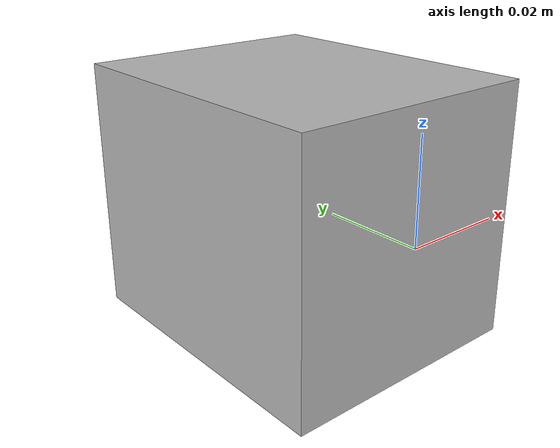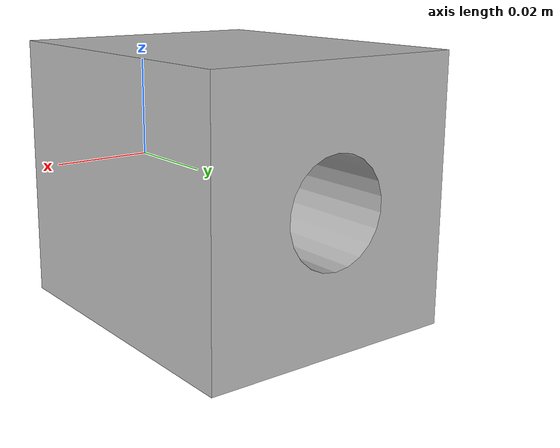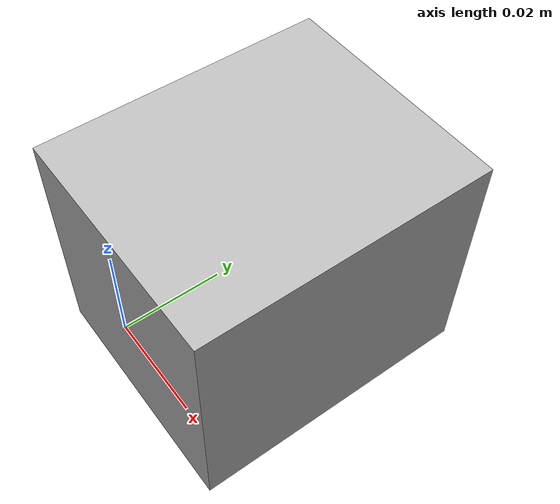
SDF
<?xml version="1.0" encoding="UTF-8"?>
<sdf version="1.4">
   <model name="hole_model">
      <static>false</static>
      <link name="hole_link">
         <pose>0 0 0 0 0 0</pose>
         <inertial>
            <mass>1</mass>
            <pose>0 0 0 0 0 0</pose>
            <inertia>
               <ixx>10</ixx>
               <ixy>0</ixy>
               <ixz>0</ixz>
               <iyy>10</iyy>
               <iyz>0</iyz>
               <izz>10</izz>
            </inertia>
         </inertial>
         <collision name="hole_collision">
            <pose>0 0 0 0 0 0</pose>
            <geometry>
               <mesh>
                  <uri>model://mobile_dual_arm/scene/meshes/hole.SLDPRT.stl</uri>
               </mesh>
            </geometry>
            <surface>
               <bounce>
                  <restitution_coefficient>0</restitution_coefficient>
               </bounce>
               <friction>
                  <ode>
                     <mu>0.1</mu>
                     <mu2>0.1</mu2>
                  </ode>
               </friction>
            </surface>
         </collision>
         <visual name="hole_visual">
            <pose>0 0 0 0 0 0</pose>
            <geometry>
               <mesh>
                  <uri>model://mobile_dual_arm/scene/meshes/hole.SLDPRT.stl</uri>
               </mesh>
            </geometry>
         </visual>
         <velocity_decay>
            <linear>0</linear>
            <angular>0</angular>
         </velocity_decay>
         <self_collide>0</self_collide>
         <gravity>1</gravity>
      </link>
   </model>
</sdf>
